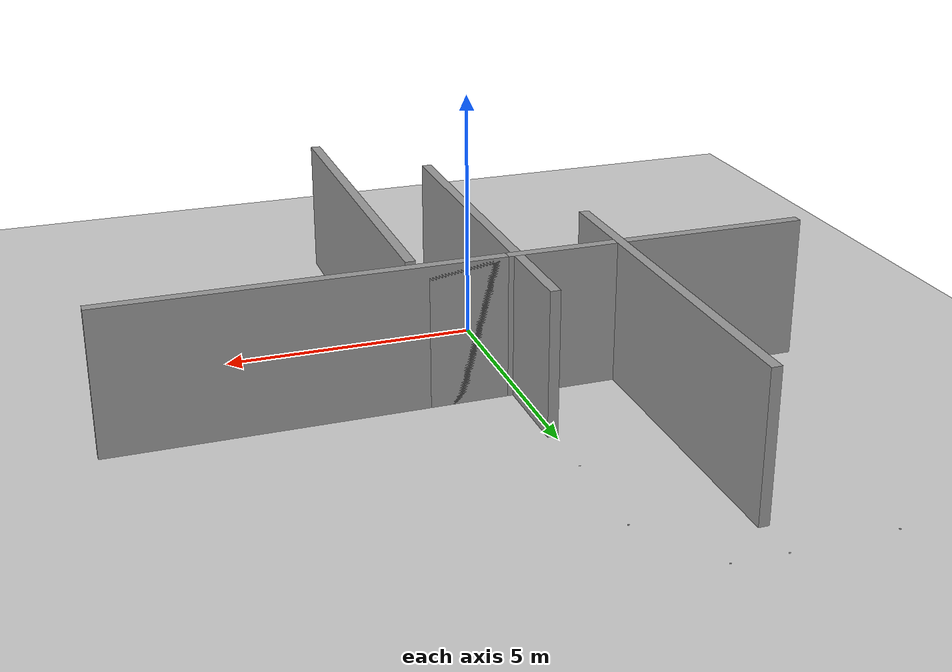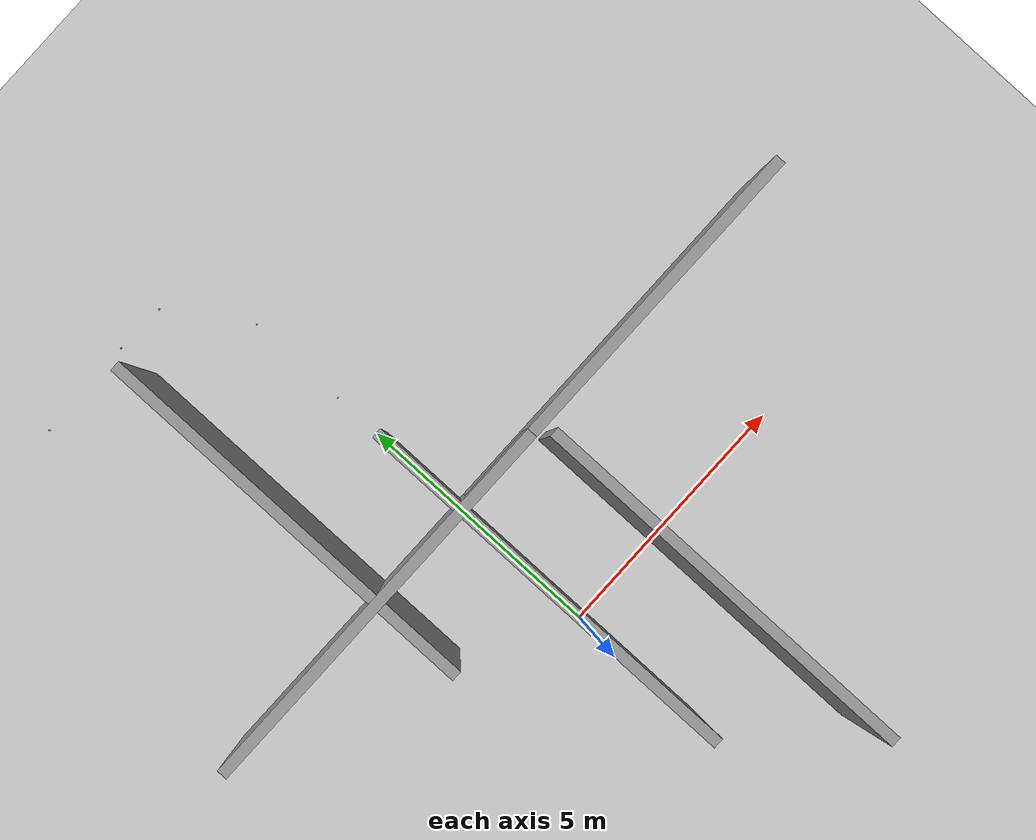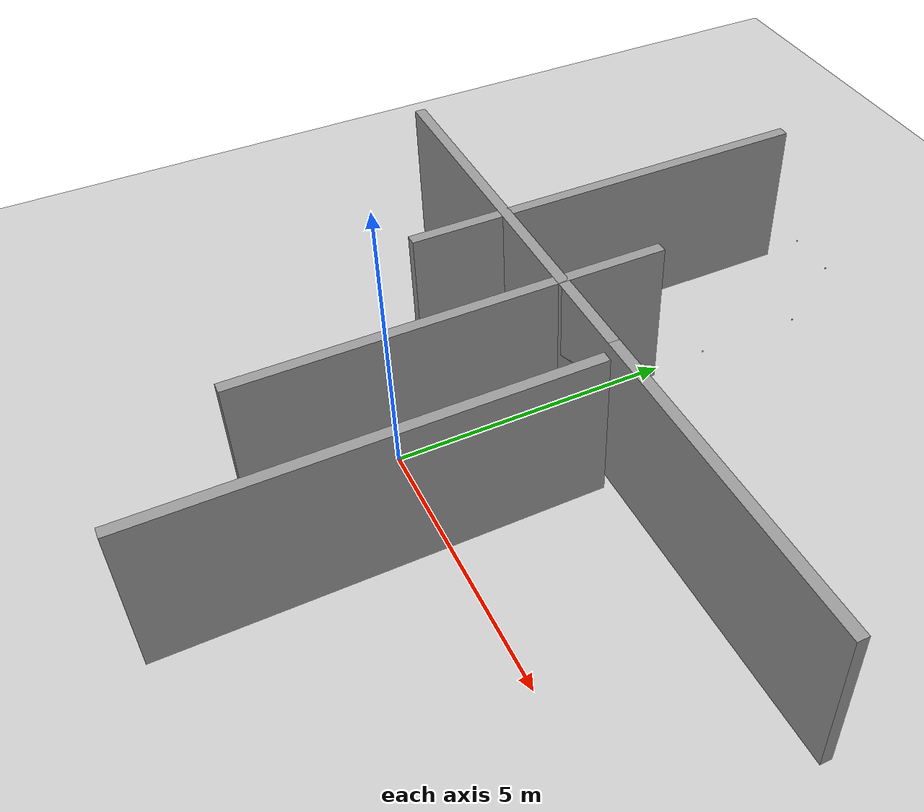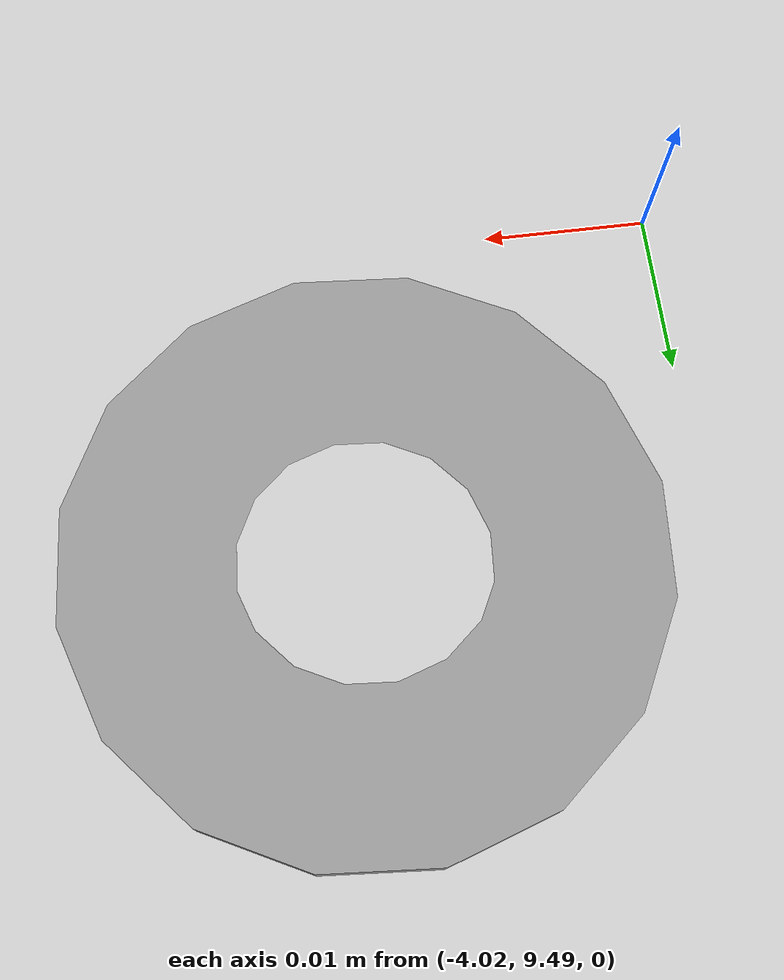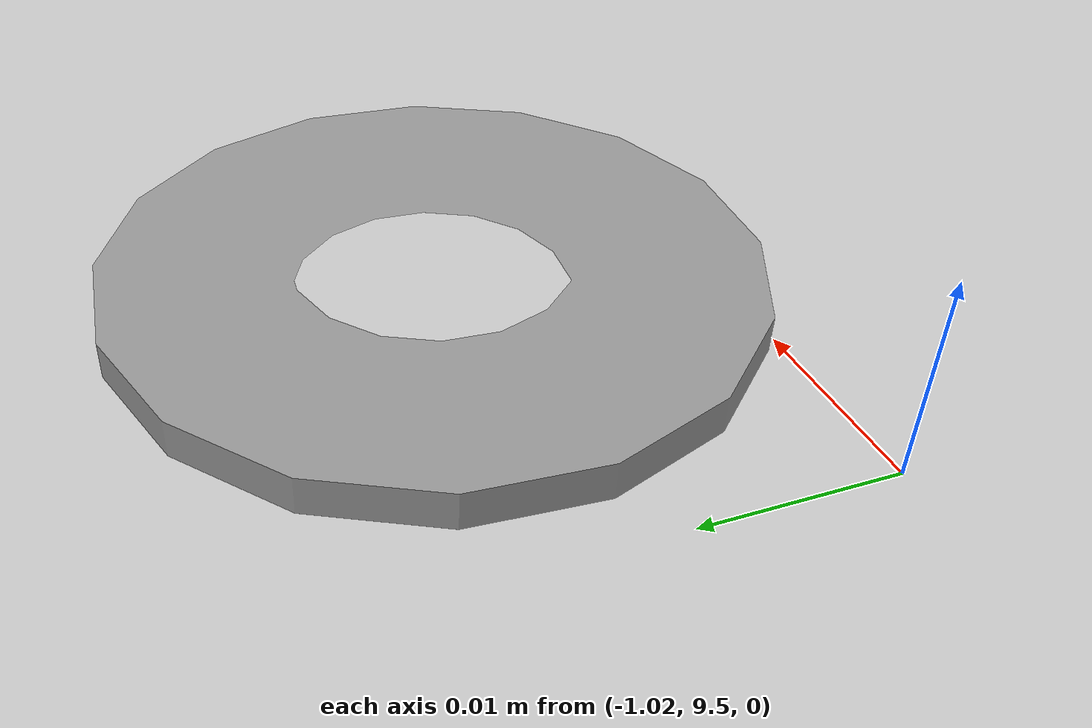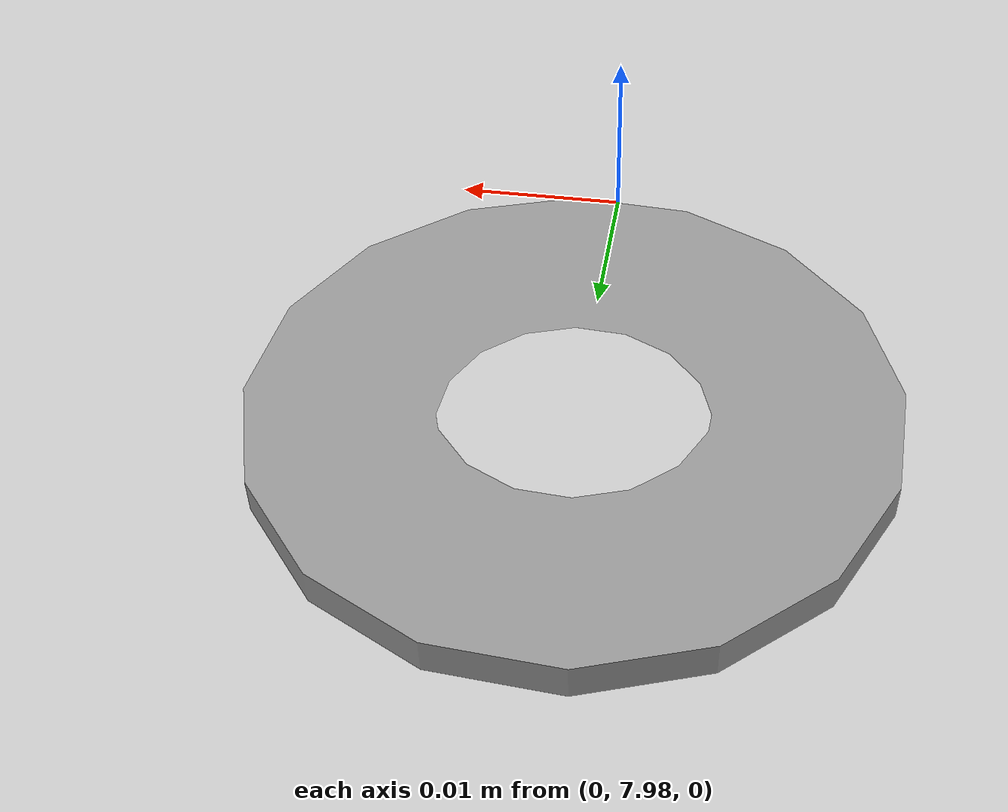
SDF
<sdf version='1.6'>
  <world name='default'>
    <light name='sun' type='directional'>
      <cast_shadows>1</cast_shadows>
      <pose frame=''>0 0 10 0 -0 0</pose>
      <diffuse>0.8 0.8 0.8 1</diffuse>
      <specular>0.2 0.2 0.2 1</specular>
      <attenuation>
        <range>1000</range>
        <constant>0.9</constant>
        <linear>0.01</linear>
        <quadratic>0.001</quadratic>
      </attenuation>
      <direction>-0.5 0.1 -0.9</direction>
    </light>
    <model name='ground_plane'>
      <static>1</static>
      <link name='link'>
        <collision name='collision'>
          <geometry>
            <plane>
              <normal>0 0 1</normal>
              <size>100 100</size>
            </plane>
          </geometry>
          <surface>
            <friction>
              <ode>
                <mu>100</mu>
                <mu2>50</mu2>
              </ode>
              <torsional>
                <ode/>
              </torsional>
            </friction>
            <contact>
              <ode/>
            </contact>
            <bounce/>
          </surface>
          <max_contacts>10</max_contacts>
        </collision>
        <visual name='visual'>
          <cast_shadows>0</cast_shadows>
          <geometry>
            <plane>
              <normal>0 0 1</normal>
              <size>100 100</size>
            </plane>
          </geometry>
          <material>
            <script>
              <uri>file://media/materials/scripts/gazebo.material</uri>
              <name>Gazebo/Grey</name>
            </script>
          </material>
        </visual>
        <self_collide>0</self_collide>
        <kinematic>0</kinematic>
        <gravity>1</gravity>
      </link>
    </model>
    <gravity>0 0 -9.8</gravity>
    <magnetic_field>6e-06 2.3e-05 -4.2e-05</magnetic_field>
    <atmosphere type='adiabatic'/>
    <physics name='default_physics' default='0' type='ode'>
      <max_step_size>0.001</max_step_size>
      <real_time_factor>1</real_time_factor>
      <real_time_update_rate>1000</real_time_update_rate>
    </physics>
    <scene>
      <ambient>0.4 0.4 0.4 1</ambient>
      <background>0.7 0.7 0.7 1</background>
      <shadows>1</shadows>
    </scene>
    <spherical_coordinates>
      <surface_model>EARTH_WGS84</surface_model>
      <latitude_deg>0</latitude_deg>
      <longitude_deg>0</longitude_deg>
      <elevation>0</elevation>
      <heading_deg>0</heading_deg>
    </spherical_coordinates>
    <model name='grey_wall'>
      <static>1</static>
      <link name='link'>
        <pose frame=''>0 0 1.4 0 -0 0</pose>
        <collision name='collision'>
          <geometry>
            <box>
              <size>7.5 0.2 2.8</size>
            </box>
          </geometry>
          <max_contacts>10</max_contacts>
          <surface>
            <contact>
              <ode/>
            </contact>
            <bounce/>
            <friction>
              <torsional>
                <ode/>
              </torsional>
              <ode/>
            </friction>
          </surface>
        </collision>
        <visual name='visual'>
          <cast_shadows>0</cast_shadows>
          <geometry>
            <box>
              <size>7.5 0.2 2.8</size>
            </box>
          </geometry>
          <material>
            <script>
              <uri>model://grey_wall/materials/scripts</uri>
              <uri>model://grey_wall/materials/textures</uri>
              <name>vrc/grey_wall</name>
            </script>
          </material>
        </visual>
        <self_collide>0</self_collide>
        <kinematic>0</kinematic>
        <gravity>1</gravity>
      </link>
      <pose frame=''>-2 3 0 0 -0 0</pose>
    </model>
    <model name='grey_wall_clone'>
      <static>1</static>
      <link name='link'>
        <pose frame=''>0 0 1.4 0 -0 0</pose>
        <collision name='collision'>
          <geometry>
            <box>
              <size>7.5 0.2 2.8</size>
            </box>
          </geometry>
          <max_contacts>10</max_contacts>
          <surface>
            <contact>
              <ode/>
            </contact>
            <bounce/>
            <friction>
              <torsional>
                <ode/>
              </torsional>
              <ode/>
            </friction>
          </surface>
        </collision>
        <visual name='visual'>
          <cast_shadows>0</cast_shadows>
          <geometry>
            <box>
              <size>7.5 0.2 2.8</size>
            </box>
          </geometry>
          <material>
            <script>
              <uri>model://grey_wall/materials/scripts</uri>
              <uri>model://grey_wall/materials/textures</uri>
              <name>vrc/grey_wall</name>
            </script>
          </material>
        </visual>
        <self_collide>0</self_collide>
        <kinematic>0</kinematic>
        <gravity>1</gravity>
      </link>
      <pose frame=''>4 3 0 0 -0 0</pose>
    </model>
    <model name='grey_wall_clone_0'>
      <static>1</static>
      <link name='link'>
        <pose frame=''>0 0 1.4 0 -0 0</pose>
        <collision name='collision'>
          <geometry>
            <box>
              <size>7.5 0.2 2.8</size>
            </box>
          </geometry>
          <max_contacts>10</max_contacts>
          <surface>
            <contact>
              <ode/>
            </contact>
            <bounce/>
            <friction>
              <torsional>
                <ode/>
              </torsional>
              <ode/>
            </friction>
          </surface>
        </collision>
        <visual name='visual'>
          <cast_shadows>0</cast_shadows>
          <geometry>
            <box>
              <size>7.5 0.2 2.8</size>
            </box>
          </geometry>
          <material>
            <script>
              <uri>model://grey_wall/materials/scripts</uri>
              <uri>model://grey_wall/materials/textures</uri>
              <name>vrc/grey_wall</name>
            </script>
          </material>
        </visual>
        <self_collide>0</self_collide>
        <kinematic>0</kinematic>
        <gravity>1</gravity>
      </link>
      <pose frame=''>0.047091 1.12355 0 0 -0 1.5708</pose>
    </model>
    <model name='grey_wall_clone_1'>
      <static>1</static>
      <link name='link'>
        <pose frame=''>0 0 1.4 0 -0 0</pose>
        <collision name='collision'>
          <geometry>
            <box>
              <size>7.5 0.2 2.8</size>
            </box>
          </geometry>
          <max_contacts>10</max_contacts>
          <surface>
            <contact>
              <ode/>
            </contact>
            <bounce/>
            <friction>
              <torsional>
                <ode/>
              </torsional>
              <ode/>
            </friction>
          </surface>
        </collision>
        <visual name='visual'>
          <cast_shadows>0</cast_shadows>
          <geometry>
            <box>
              <size>7.5 0.2 2.8</size>
            </box>
          </geometry>
          <material>
            <script>
              <uri>model://grey_wall/materials/scripts</uri>
              <uri>model://grey_wall/materials/textures</uri>
              <name>vrc/grey_wall</name>
            </script>
          </material>
        </visual>
        <self_collide>0</self_collide>
        <kinematic>0</kinematic>
        <gravity>1</gravity>
      </link>
      <pose frame=''>-2 5 0 0 -0 1.5708</pose>
    </model>
    <model name='grey_wall_clone_2'>
      <static>1</static>
      <link name='link'>
        <pose frame=''>0 0 1.4 0 -0 0</pose>
        <collision name='collision'>
          <geometry>
            <box>
              <size>7.5 0.2 2.8</size>
            </box>
          </geometry>
          <max_contacts>10</max_contacts>
          <surface>
            <contact>
              <ode/>
            </contact>
            <bounce/>
            <friction>
              <torsional>
                <ode/>
              </torsional>
              <ode/>
            </friction>
          </surface>
        </collision>
        <visual name='visual'>
          <cast_shadows>0</cast_shadows>
          <geometry>
            <box>
              <size>7.5 0.2 2.8</size>
            </box>
          </geometry>
          <material>
            <script>
              <uri>model://grey_wall/materials/scripts</uri>
              <uri>model://grey_wall/materials/textures</uri>
              <name>vrc/grey_wall</name>
            </script>
          </material>
        </visual>
        <self_collide>0</self_collide>
        <kinematic>0</kinematic>
        <gravity>1</gravity>
      </link>
      <pose frame=''>2 -1 0 0 -0 1.5708</pose>
    </model>

    <model name='washer'>
      <link name='link'>
        <pose frame=''>0 0 0.001 0 -0 0</pose>
        <inertial>
          <mass>0.0122</mass>
          <inertia>
            <ixx>1.08758e-06</ixx>
            <ixy>0</ixy>
            <ixz>0</ixz>
            <iyy>1.08758e-06</iyy>
            <iyz>0</iyz>
            <izz>2.16703e-06</izz>
          </inertia>
        </inertial>
        <collision name='collision'>
          <geometry>
            <mesh>
              <uri>model://washer/meshes/washer.dae</uri>
              <scale>1 1 1</scale>
            </mesh>
          </geometry>
          <surface>
            <contact>
              <poissons_ratio>0.305</poissons_ratio>
              <elastic_modulus>2e+11</elastic_modulus>
              <ode>
                <kp>100000</kp>
                <kd>100</kd>
                <max_vel>100</max_vel>
                <min_depth>0.001</min_depth>
              </ode>
            </contact>
            <friction>
              <torsional>
                <coefficient>1</coefficient>
                <use_patch_radius>0</use_patch_radius>
                <surface_radius>0.01</surface_radius>
                <ode/>
              </torsional>
              <ode/>
            </friction>
            <bounce/>
          </surface>
          <max_contacts>10</max_contacts>
        </collision>
        <visual name='visual'>
          <geometry>
            <mesh>
              <uri>model://washer/meshes/washer.dae</uri>
              <scale>1 1 1</scale>
            </mesh>
          </geometry>
          <material>
            <script>
              <uri>file://media/materials/scripts/gazebo.material</uri>
              <name>Gazebo/Grey</name>
            </script>
          </material>
        </visual>
        <self_collide>0</self_collide>
        <kinematic>0</kinematic>
        <gravity>1</gravity>
      </link>
      <pose frame=''>0 2 0 0 -0 0</pose>
    </model>
    <model name='washer_0'>
      <link name='link'>
        <pose frame=''>0 0 0.001 0 -0 0</pose>
        <inertial>
          <mass>0.0122</mass>
          <inertia>
            <ixx>1.08758e-06</ixx>
            <ixy>0</ixy>
            <ixz>0</ixz>
            <iyy>1.08758e-06</iyy>
            <iyz>0</iyz>
            <izz>2.16703e-06</izz>
          </inertia>
        </inertial>
        <collision name='collision'>
          <geometry>
            <mesh>
              <uri>model://washer/meshes/washer.dae</uri>
              <scale>1 1 1</scale>
            </mesh>
          </geometry>
          <surface>
            <contact>
              <poissons_ratio>0.305</poissons_ratio>
              <elastic_modulus>2e+11</elastic_modulus>
              <ode>
                <kp>100000</kp>
                <kd>100</kd>
                <max_vel>100</max_vel>
                <min_depth>0.001</min_depth>
              </ode>
            </contact>
            <friction>
              <torsional>
                <coefficient>1</coefficient>
                <use_patch_radius>0</use_patch_radius>
                <surface_radius>0.01</surface_radius>
                <ode/>
              </torsional>
              <ode/>
            </friction>
            <bounce/>
          </surface>
          <max_contacts>10</max_contacts>
        </collision>
        <visual name='visual'>
          <geometry>
            <mesh>
              <uri>model://washer/meshes/washer.dae</uri>
              <scale>1 1 1</scale>
            </mesh>
          </geometry>
          <material>
            <script>
              <uri>file://media/materials/scripts/gazebo.material</uri>
              <name>Gazebo/Grey</name>
            </script>
          </material>
        </visual>
        <self_collide>0</self_collide>
        <kinematic>0</kinematic>
        <gravity>1</gravity>
      </link>
      <pose frame=''>0 4 0 0 -0 0</pose>
    </model>
    <model name='washer_1'>
      <link name='link'>
        <pose frame=''>0 0 0.001 0 -0 0</pose>
        <inertial>
          <mass>0.0122</mass>
          <inertia>
            <ixx>1.08758e-06</ixx>
            <ixy>0</ixy>
            <ixz>0</ixz>
            <iyy>1.08758e-06</iyy>
            <iyz>0</iyz>
            <izz>2.16703e-06</izz>
          </inertia>
        </inertial>
        <collision name='collision'>
          <geometry>
            <mesh>
              <uri>model://washer/meshes/washer.dae</uri>
              <scale>1 1 1</scale>
            </mesh>
          </geometry>
          <surface>
            <contact>
              <poissons_ratio>0.305</poissons_ratio>
              <elastic_modulus>2e+11</elastic_modulus>
              <ode>
                <kp>100000</kp>
                <kd>100</kd>
                <max_vel>100</max_vel>
                <min_depth>0.001</min_depth>
              </ode>
            </contact>
            <friction>
              <torsional>
                <coefficient>1</coefficient>
                <use_patch_radius>0</use_patch_radius>
                <surface_radius>0.01</surface_radius>
                <ode/>
              </torsional>
              <ode/>
            </friction>
            <bounce/>
          </surface>
          <max_contacts>10</max_contacts>
        </collision>
        <visual name='visual'>
          <geometry>
            <mesh>
              <uri>model://washer/meshes/washer.dae</uri>
              <scale>1 1 1</scale>
            </mesh>
          </geometry>
          <material>
            <script>
              <uri>file://media/materials/scripts/gazebo.material</uri>
              <name>Gazebo/Grey</name>
            </script>
          </material>
        </visual>
        <self_collide>0</self_collide>
        <kinematic>0</kinematic>
        <gravity>1</gravity>
      </link>
      <pose frame=''>0 6 0 0 -0 0</pose>
    </model>
    <model name='washer_2'>
      <link name='link'>
        <pose frame=''>0 0 0.001 0 -0 0</pose>
        <inertial>
          <mass>0.0122</mass>
          <inertia>
            <ixx>1.08758e-06</ixx>
            <ixy>0</ixy>
            <ixz>0</ixz>
            <iyy>1.08758e-06</iyy>
            <iyz>0</iyz>
            <izz>2.16703e-06</izz>
          </inertia>
        </inertial>
        <collision name='collision'>
          <geometry>
            <mesh>
              <uri>model://washer/meshes/washer.dae</uri>
              <scale>1 1 1</scale>
            </mesh>
          </geometry>
          <surface>
            <contact>
              <poissons_ratio>0.305</poissons_ratio>
              <elastic_modulus>2e+11</elastic_modulus>
              <ode>
                <kp>100000</kp>
                <kd>100</kd>
                <max_vel>100</max_vel>
                <min_depth>0.001</min_depth>
              </ode>
            </contact>
            <friction>
              <torsional>
                <coefficient>1</coefficient>
                <use_patch_radius>0</use_patch_radius>
                <surface_radius>0.01</surface_radius>
                <ode/>
              </torsional>
              <ode/>
            </friction>
            <bounce/>
          </surface>
          <max_contacts>10</max_contacts>
        </collision>
        <visual name='visual'>
          <geometry>
            <mesh>
              <uri>model://washer/meshes/washer.dae</uri>
              <scale>1 1 1</scale>
            </mesh>
          </geometry>
          <material>
            <script>
              <uri>file://media/materials/scripts/gazebo.material</uri>
              <name>Gazebo/Grey</name>
            </script>
          </material>
        </visual>
        <self_collide>0</self_collide>
        <kinematic>0</kinematic>
        <gravity>1</gravity>
      </link>
      <pose frame=''>0 8 0 0 -0 0</pose>
    </model>
    <model name='washer_3'>
      <link name='link'>
        <pose frame=''>0 0 0.001 0 -0 0</pose>
        <inertial>
          <mass>0.0122</mass>
          <inertia>
            <ixx>1.08758e-06</ixx>
            <ixy>0</ixy>
            <ixz>0</ixz>
            <iyy>1.08758e-06</iyy>
            <iyz>0</iyz>
            <izz>2.16703e-06</izz>
          </inertia>
        </inertial>
        <collision name='collision'>
          <geometry>
            <mesh>
              <uri>model://washer/meshes/washer.dae</uri>
              <scale>1 1 1</scale>
            </mesh>
          </geometry>
          <surface>
            <contact>
              <poissons_ratio>0.305</poissons_ratio>
              <elastic_modulus>2e+11</elastic_modulus>
              <ode>
                <kp>100000</kp>
                <kd>100</kd>
                <max_vel>100</max_vel>
                <min_depth>0.001</min_depth>
              </ode>
            </contact>
            <friction>
              <torsional>
                <coefficient>1</coefficient>
                <use_patch_radius>0</use_patch_radius>
                <surface_radius>0.01</surface_radius>
                <ode/>
              </torsional>
              <ode/>
            </friction>
            <bounce/>
          </surface>
          <max_contacts>10</max_contacts>
        </collision>
        <visual name='visual'>
          <geometry>
            <mesh>
              <uri>model://washer/meshes/washer.dae</uri>
              <scale>1 1 1</scale>
            </mesh>
          </geometry>
          <material>
            <script>
              <uri>file://media/materials/scripts/gazebo.material</uri>
              <name>Gazebo/Grey</name>
            </script>
          </material>
        </visual>
        <self_collide>0</self_collide>
        <kinematic>0</kinematic>
        <gravity>1</gravity>
      </link>
      <pose frame=''>-1 9.51459 0 0 -0 0</pose>
    </model>
    <model name='washer_4'>
      <link name='link'>
        <pose frame=''>0 0 0.001 0 -0 0</pose>
        <inertial>
          <mass>0.0122</mass>
          <inertia>
            <ixx>1.08758e-06</ixx>
            <ixy>0</ixy>
            <ixz>0</ixz>
            <iyy>1.08758e-06</iyy>
            <iyz>0</iyz>
            <izz>2.16703e-06</izz>
          </inertia>
        </inertial>
        <collision name='collision'>
          <geometry>
            <mesh>
              <uri>model://washer/meshes/washer.dae</uri>
              <scale>1 1 1</scale>
            </mesh>
          </geometry>
          <surface>
            <contact>
              <poissons_ratio>0.305</poissons_ratio>
              <elastic_modulus>2e+11</elastic_modulus>
              <ode>
                <kp>100000</kp>
                <kd>100</kd>
                <max_vel>100</max_vel>
                <min_depth>0.001</min_depth>
              </ode>
            </contact>
            <friction>
              <torsional>
                <coefficient>1</coefficient>
                <use_patch_radius>0</use_patch_radius>
                <surface_radius>0.01</surface_radius>
                <ode/>
              </torsional>
              <ode/>
            </friction>
            <bounce/>
          </surface>
          <max_contacts>10</max_contacts>
        </collision>
        <visual name='visual'>
          <geometry>
            <mesh>
              <uri>model://washer/meshes/washer.dae</uri>
              <scale>1 1 1</scale>
            </mesh>
          </geometry>
          <material>
            <script>
              <uri>file://media/materials/scripts/gazebo.material</uri>
              <name>Gazebo/Grey</name>
            </script>
          </material>
        </visual>
        <self_collide>0</self_collide>
        <kinematic>0</kinematic>
        <gravity>1</gravity>
      </link>
      <pose frame=''>-2 9.54801 0 0 -0 0</pose>
    </model>
    <model name='washer_5'>
      <link name='link'>
        <pose frame=''>0 0 0.001 0 -0 0</pose>
        <inertial>
          <mass>0.0122</mass>
          <inertia>
            <ixx>1.08758e-06</ixx>
            <ixy>0</ixy>
            <ixz>0</ixz>
            <iyy>1.08758e-06</iyy>
            <iyz>0</iyz>
            <izz>2.16703e-06</izz>
          </inertia>
        </inertial>
        <collision name='collision'>
          <geometry>
            <mesh>
              <uri>model://washer/meshes/washer.dae</uri>
              <scale>1 1 1</scale>
            </mesh>
          </geometry>
          <surface>
            <contact>
              <poissons_ratio>0.305</poissons_ratio>
              <elastic_modulus>2e+11</elastic_modulus>
              <ode>
                <kp>100000</kp>
                <kd>100</kd>
                <max_vel>100</max_vel>
                <min_depth>0.001</min_depth>
              </ode>
            </contact>
            <friction>
              <torsional>
                <coefficient>1</coefficient>
                <use_patch_radius>0</use_patch_radius>
                <surface_radius>0.01</surface_radius>
                <ode/>
              </torsional>
              <ode/>
            </friction>
            <bounce/>
          </surface>
          <max_contacts>10</max_contacts>
        </collision>
        <visual name='visual'>
          <geometry>
            <mesh>
              <uri>model://washer/meshes/washer.dae</uri>
              <scale>1 1 1</scale>
            </mesh>
          </geometry>
          <material>
            <script>
              <uri>file://media/materials/scripts/gazebo.material</uri>
              <name>Gazebo/Grey</name>
            </script>
          </material>
        </visual>
        <self_collide>0</self_collide>
        <kinematic>0</kinematic>
        <gravity>1</gravity>
      </link>
      <pose frame=''>-4 9.51009 0 0 -0 0</pose>
    </model>
  </world>
</sdf>
